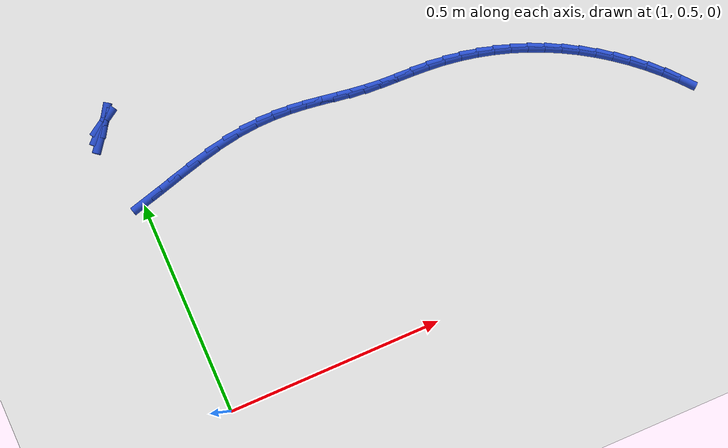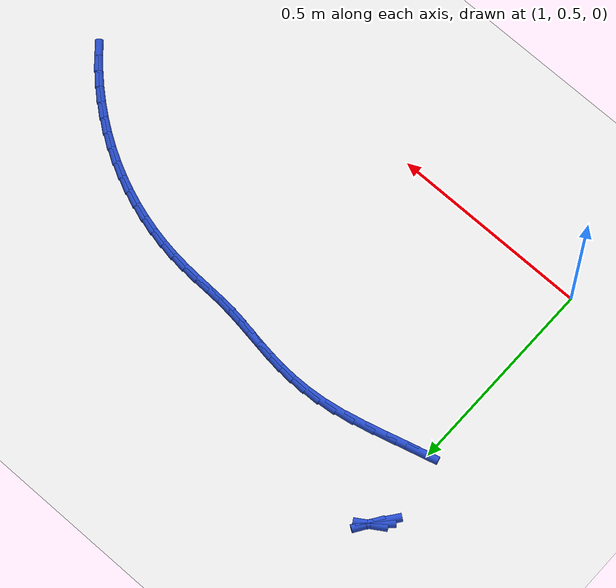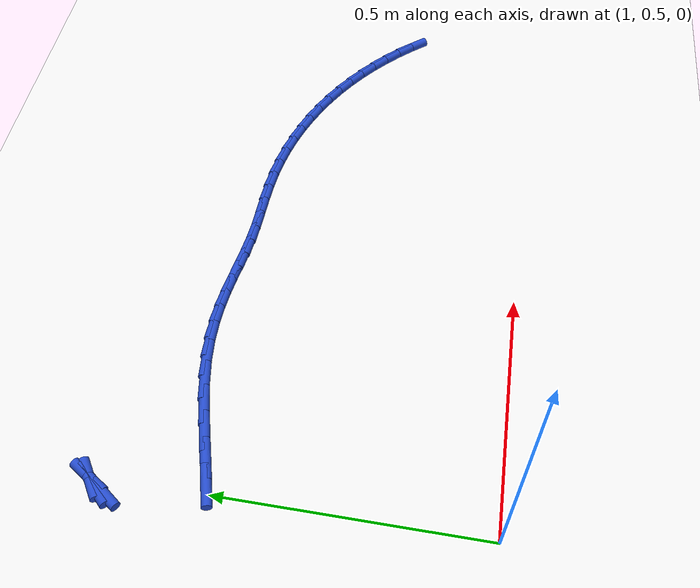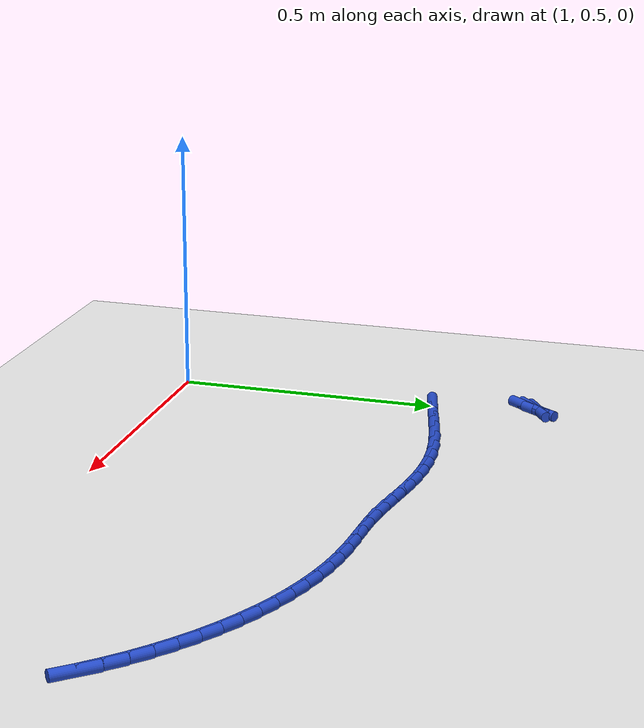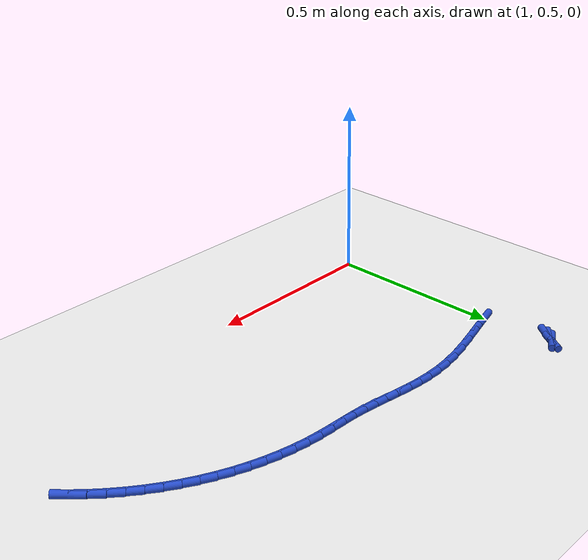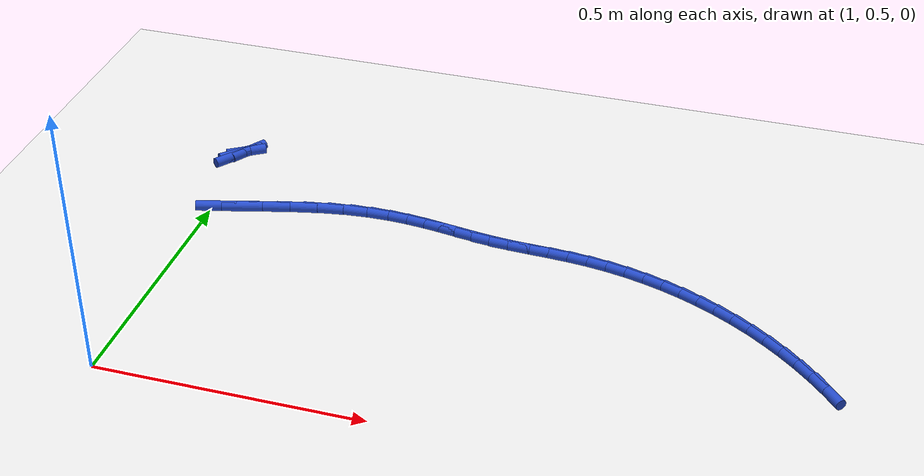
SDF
<sdf version="1.6">
 <world name="default">
  <model name="ground_plane">
   <static>1</static>
   <link name="link">
    <collision name="collision">
     <geometry><plane><normal>0 0 1</normal><size>100 100</size></plane></geometry>
     <surface><friction><ode><mu>100</mu><mu2>50</mu2></ode></friction></surface>
    </collision>
    <visual name="visual">
     <cast_shadows>0</cast_shadows>
     <geometry><plane><normal>0 0 1</normal><size>100 100</size></plane></geometry>
     <material>
      <script><uri>file://media/materials/scripts/gazebo.material</uri><name>Gazebo/WhiteGlow</name></script>
     </material>
    </visual>
   </link>
  </model>
  <model name="line">
   <link name="link_47">
    <pose>0.9768431027024098 1.1958077229747806 0.01 0 1.57 0.7781224287706942</pose>
    <collision name="collision">
     <geometry><cylinder><radius>0.01</radius><length>0.08</length></cylinder></geometry>
    </collision>
    <visual name="visual">
     <material>
      <script><name>Gazebo/Blue</name><uri>file://media/materials/scripts/gazebo.material</uri></script>
     </material>
     <geometry><cylinder><radius>0.01</radius><length>0.08</length></cylinder></geometry>
    </visual>
   </link>
   <link name="link_48">
    <pose>0.9894297027763872 1.2082124892903996 0.01 0 1.57 0.5668651279600222</pose>
    <collision name="collision">
     <geometry><cylinder><radius>0.01</radius><length>0.08</length></cylinder></geometry>
    </collision>
    <visual name="visual">
     <material>
      <script><name>Gazebo/Blue</name><uri>file://media/materials/scripts/gazebo.material</uri></script>
     </material>
     <geometry><cylinder><radius>0.01</radius><length>0.08</length></cylinder></geometry>
    </visual>
   </link>
   <link name="link_49">
    <pose>0.9933382771162095 1.2107005102714379 0.01 0 1.57 0.9958888680821032</pose>
    <collision name="collision">
     <geometry><cylinder><radius>0.01</radius><length>0.08</length></cylinder></geometry>
    </collision>
    <visual name="visual">
     <material>
      <script><name>Gazebo/Blue</name><uri>file://media/materials/scripts/gazebo.material</uri></script>
     </material>
     <geometry><cylinder><radius>0.01</radius><length>0.08</length></cylinder></geometry>
    </visual>
   </link>
   <link name="link_50">
    <pose>0.9876072796097402 1.2018552057309635 0.01 0 1.57 0.9258488552155959</pose>
    <collision name="collision">
     <geometry><cylinder><radius>0.01</radius><length>0.08</length></cylinder></geometry>
    </collision>
    <visual name="visual">
     <material>
      <script><name>Gazebo/Blue</name><uri>file://media/materials/scripts/gazebo.material</uri></script>
     </material>
     <geometry><cylinder><radius>0.01</radius><length>0.08</length></cylinder></geometry>
    </visual>
   </link>
   <link name="link_51">
    <pose>0.9716697754355356 1.1806691086660293 0.01 0 1.57 0.9261754921088093</pose>
    <collision name="collision">
     <geometry><cylinder><radius>0.01</radius><length>0.08</length></cylinder></geometry>
    </collision>
    <visual name="visual">
     <material>
      <script><name>Gazebo/Blue</name><uri>file://media/materials/scripts/gazebo.material</uri></script>
     </material>
     <geometry><cylinder><radius>0.01</radius><length>0.08</length></cylinder></geometry>
    </visual>
   </link>
   <link name="link_61">
    <pose>1.0116015440145871 1.0059673894319143 0.01 0 1.57 0.25953982782651713</pose>
    <collision name="collision">
     <geometry><cylinder><radius>0.01</radius><length>0.08</length></cylinder></geometry>
    </collision>
    <visual name="visual">
     <material>
      <script><name>Gazebo/Blue</name><uri>file://media/materials/scripts/gazebo.material</uri></script>
     </material>
     <geometry><cylinder><radius>0.01</radius><length>0.08</length></cylinder></geometry>
    </visual>
   </link>
   <link name="link_62">
    <pose>1.0607711028946938 1.019023326574883 0.01 0 1.57 0.266469681383502</pose>
    <collision name="collision">
     <geometry><cylinder><radius>0.01</radius><length>0.08</length></cylinder></geometry>
    </collision>
    <visual name="visual">
     <material>
      <script><name>Gazebo/Blue</name><uri>file://media/materials/scripts/gazebo.material</uri></script>
     </material>
     <geometry><cylinder><radius>0.01</radius><length>0.08</length></cylinder></geometry>
    </visual>
   </link>
   <link name="link_63">
    <pose>1.1123745950959743 1.03310907289839 0.01 0 1.57 0.2533410840350094</pose>
    <collision name="collision">
     <geometry><cylinder><radius>0.01</radius><length>0.08</length></cylinder></geometry>
    </collision>
    <visual name="visual">
     <material>
      <script><name>Gazebo/Blue</name><uri>file://media/materials/scripts/gazebo.material</uri></script>
     </material>
     <geometry><cylinder><radius>0.01</radius><length>0.08</length></cylinder></geometry>
    </visual>
   </link>
   <link name="link_64">
    <pose>1.164396683604426 1.0465777942025274 0.01 0 1.57 0.21865437996021253</pose>
    <collision name="collision">
     <geometry><cylinder><radius>0.01</radius><length>0.08</length></cylinder></geometry>
    </collision>
    <visual name="visual">
     <material>
      <script><name>Gazebo/Blue</name><uri>file://media/materials/scripts/gazebo.material</uri></script>
     </material>
     <geometry><cylinder><radius>0.01</radius><length>0.08</length></cylinder></geometry>
    </visual>
   </link>
   <link name="link_65">
    <pose>1.2148220314060487 1.0577826562873878 0.01 0 1.57 0.1578361658310611</pose>
    <collision name="collision">
     <geometry><cylinder><radius>0.01</radius><length>0.08</length></cylinder></geometry>
    </collision>
    <visual name="visual">
     <material>
      <script><name>Gazebo/Blue</name><uri>file://media/materials/scripts/gazebo.material</uri></script>
     </material>
     <geometry><cylinder><radius>0.01</radius><length>0.08</length></cylinder></geometry>
    </visual>
   </link>
   <link name="link_66">
    <pose>1.26185294058029 1.065268097892469 0.01 0 1.57 0.08597641374929144</pose>
    <collision name="collision">
     <geometry><cylinder><radius>0.01</radius><length>0.08</length></cylinder></geometry>
    </collision>
    <visual name="visual">
     <material>
      <script><name>Gazebo/Blue</name><uri>file://media/materials/scripts/gazebo.material</uri></script>
     </material>
     <geometry><cylinder><radius>0.01</radius><length>0.08</length></cylinder></geometry>
    </visual>
   </link>
   <link name="link_67">
    <pose>1.3053261710530084 1.069015007209732 0.01 0 1.57 0.01585553881359983</pose>
    <collision name="collision">
     <geometry><cylinder><radius>0.01</radius><length>0.08</length></cylinder></geometry>
    </collision>
    <visual name="visual">
     <material>
      <script><name>Gazebo/Blue</name><uri>file://media/materials/scripts/gazebo.material</uri></script>
     </material>
     <geometry><cylinder><radius>0.01</radius><length>0.08</length></cylinder></geometry>
    </visual>
   </link>
   <link name="link_68">
    <pose>1.3458213381599664 1.0696571337142582 0.01 0 1.57 -0.04787957326140812</pose>
    <collision name="collision">
     <geometry><cylinder><radius>0.01</radius><length>0.08</length></cylinder></geometry>
    </collision>
    <visual name="visual">
     <material>
      <script><name>Gazebo/Blue</name><uri>file://media/materials/scripts/gazebo.material</uri></script>
     </material>
     <geometry><cylinder><radius>0.01</radius><length>0.08</length></cylinder></geometry>
    </visual>
   </link>
   <link name="link_69">
    <pose>1.3839217874486645 1.067831505191807 0.01 0 1.57 -0.10041747998975852</pose>
    <collision name="collision">
     <geometry><cylinder><radius>0.01</radius><length>0.08</length></cylinder></geometry>
    </collision>
    <visual name="visual">
     <material>
      <script><name>Gazebo/Blue</name><uri>file://media/materials/scripts/gazebo.material</uri></script>
     </material>
     <geometry><cylinder><radius>0.01</radius><length>0.08</length></cylinder></geometry>
    </visual>
   </link>
   <link name="link_70">
    <pose>1.4202108644666065 1.0641751494281386 0.01 0 1.57 -0.13745935292737266</pose>
    <collision name="collision">
     <geometry><cylinder><radius>0.01</radius><length>0.08</length></cylinder></geometry>
    </collision>
    <visual name="visual">
     <material>
      <script><name>Gazebo/Blue</name><uri>file://media/materials/scripts/gazebo.material</uri></script>
     </material>
     <geometry><cylinder><radius>0.01</radius><length>0.08</length></cylinder></geometry>
    </visual>
   </link>
   <link name="link_71">
    <pose>1.455271914761294 1.0593250942090129 0.01 0 1.57 -0.15582397502973513</pose>
    <collision name="collision">
     <geometry><cylinder><radius>0.01</radius><length>0.08</length></cylinder></geometry>
    </collision>
    <visual name="visual">
     <material>
      <script><name>Gazebo/Blue</name><uri>file://media/materials/scripts/gazebo.material</uri></script>
     </material>
     <geometry><cylinder><radius>0.01</radius><length>0.08</length></cylinder></geometry>
    </visual>
   </link>
   <link name="link_72">
    <pose>1.4896882838802303 1.0539183673201908 0.01 0 1.57 -0.1538144058056962</pose>
    <collision name="collision">
     <geometry><cylinder><radius>0.01</radius><length>0.08</length></cylinder></geometry>
    </collision>
    <visual name="visual">
     <material>
      <script><name>Gazebo/Blue</name><uri>file://media/materials/scripts/gazebo.material</uri></script>
     </material>
     <geometry><cylinder><radius>0.01</radius><length>0.08</length></cylinder></geometry>
    </visual>
   </link>
   <link name="link_73">
    <pose>1.5240433173709171 1.0485919965474315 0.01 0 1.57 -0.13138828256461088</pose>
    <collision name="collision">
     <geometry><cylinder><radius>0.01</radius><length>0.08</length></cylinder></geometry>
    </collision>
    <visual name="visual">
     <material>
      <script><name>Gazebo/Blue</name><uri>file://media/materials/scripts/gazebo.material</uri></script>
     </material>
     <geometry><cylinder><radius>0.01</radius><length>0.08</length></cylinder></geometry>
    </visual>
   </link>
   <link name="link_74">
    <pose>1.5589203607808573 1.0439830096764955 0.01 0 1.57 -0.09051141841294229</pose>
    <collision name="collision">
     <geometry><cylinder><radius>0.01</radius><length>0.08</length></cylinder></geometry>
    </collision>
    <visual name="visual">
     <material>
      <script><name>Gazebo/Blue</name><uri>file://media/materials/scripts/gazebo.material</uri></script>
     </material>
     <geometry><cylinder><radius>0.01</radius><length>0.08</length></cylinder></geometry>
    </visual>
   </link>
   <link name="link_75">
    <pose>1.5948958616617415 1.0407178949052458 0.01 0 1.57 -0.051226454961436345</pose>
    <collision name="collision">
     <geometry><cylinder><radius>0.01</radius><length>0.08</length></cylinder></geometry>
    </collision>
    <visual name="visual">
     <material>
      <script><name>Gazebo/Blue</name><uri>file://media/materials/scripts/gazebo.material</uri></script>
     </material>
     <geometry><cylinder><radius>0.01</radius><length>0.08</length></cylinder></geometry>
    </visual>
   </link>
   <link name="link_76">
    <pose>1.632143763413062 1.0388081461626042 0.01 0 1.57 -0.039013599618831454</pose>
    <collision name="collision">
     <geometry><cylinder><radius>0.01</radius><length>0.08</length></cylinder></geometry>
    </collision>
    <visual name="visual">
     <material>
      <script><name>Gazebo/Blue</name><uri>file://media/materials/scripts/gazebo.material</uri></script>
     </material>
     <geometry><cylinder><radius>0.01</radius><length>0.08</length></cylinder></geometry>
    </visual>
   </link>
   <link name="link_77">
    <pose>1.670220582514863 1.0373218782474272 0.01 0 1.57 -0.05396181432728027</pose>
    <collision name="collision">
     <geometry><cylinder><radius>0.01</radius><length>0.08</length></cylinder></geometry>
    </collision>
    <visual name="visual">
     <material>
      <script><name>Gazebo/Blue</name><uri>file://media/materials/scripts/gazebo.material</uri></script>
     </material>
     <geometry><cylinder><radius>0.01</radius><length>0.08</length></cylinder></geometry>
    </visual>
   </link>
   <link name="link_78">
    <pose>1.708630470740912 1.0352471968603307 0.01 0 1.57 -0.09480887139060566</pose>
    <collision name="collision">
     <geometry><cylinder><radius>0.01</radius><length>0.08</length></cylinder></geometry>
    </collision>
    <visual name="visual">
     <material>
      <script><name>Gazebo/Blue</name><uri>file://media/materials/scripts/gazebo.material</uri></script>
     </material>
     <geometry><cylinder><radius>0.01</radius><length>0.08</length></cylinder></geometry>
    </visual>
   </link>
   <link name="link_79">
    <pose>1.746893122568381 1.0316086495219603 0.01 0 1.57 -0.1473588065636504</pose>
    <collision name="collision">
     <geometry><cylinder><radius>0.01</radius><length>0.08</length></cylinder></geometry>
    </collision>
    <visual name="visual">
     <material>
      <script><name>Gazebo/Blue</name><uri>file://media/materials/scripts/gazebo.material</uri></script>
     </material>
     <geometry><cylinder><radius>0.01</radius><length>0.08</length></cylinder></geometry>
    </visual>
   </link>
   <link name="link_80">
    <pose>1.784765493885425 1.0259870729269553 0.01 0 1.57 -0.2000921047071594</pose>
    <collision name="collision">
     <geometry><cylinder><radius>0.01</radius><length>0.08</length></cylinder></geometry>
    </collision>
    <visual name="visual">
     <material>
      <script><name>Gazebo/Blue</name><uri>file://media/materials/scripts/gazebo.material</uri></script>
     </material>
     <geometry><cylinder><radius>0.01</radius><length>0.08</length></cylinder></geometry>
    </visual>
   </link>
   <link name="link_81">
    <pose>1.8221896171093883 1.018397238935061 0.01 0 1.57 -0.25263947650053314</pose>
    <collision name="collision">
     <geometry><cylinder><radius>0.01</radius><length>0.08</length></cylinder></geometry>
    </collision>
    <visual name="visual">
     <material>
      <script><name>Gazebo/Blue</name><uri>file://media/materials/scripts/gazebo.material</uri></script>
     </material>
     <geometry><cylinder><radius>0.01</radius><length>0.08</length></cylinder></geometry>
    </visual>
   </link>
   <link name="link_82">
    <pose>1.8591124281042621 1.0088654161524775 0.01 0 1.57 -0.3049478398329003</pose>
    <collision name="collision">
     <geometry><cylinder><radius>0.01</radius><length>0.08</length></cylinder></geometry>
    </collision>
    <visual name="visual">
     <material>
      <script><name>Gazebo/Blue</name><uri>file://media/materials/scripts/gazebo.material</uri></script>
     </material>
     <geometry><cylinder><radius>0.01</radius><length>0.08</length></cylinder></geometry>
    </visual>
   </link>
   <link name="link_83">
    <pose>1.8954808627340403 0.9974178731854054 0.01 0 1.57 -0.35697052521318434</pose>
    <collision name="collision">
     <geometry><cylinder><radius>0.01</radius><length>0.08</length></cylinder></geometry>
    </collision>
    <visual name="visual">
     <material>
      <script><name>Gazebo/Blue</name><uri>file://media/materials/scripts/gazebo.material</uri></script>
     </material>
     <geometry><cylinder><radius>0.01</radius><length>0.08</length></cylinder></geometry>
    </visual>
   </link>
   <link name="link_84">
    <pose>1.931241856862713 0.9840808786400467 0.01 0 1.57 -0.4086671174757542</pose>
    <collision name="collision">
     <geometry><cylinder><radius>0.01</radius><length>0.08</length></cylinder></geometry>
    </collision>
    <visual name="visual">
     <material>
      <script><name>Gazebo/Blue</name><uri>file://media/materials/scripts/gazebo.material</uri></script>
     </material>
     <geometry><cylinder><radius>0.01</radius><length>0.08</length></cylinder></geometry>
    </visual>
   </link>
   <link name="link_85">
    <pose>1.9663423463542742 0.9688807011226017 0.01 0 1.57 -0.4600031367282197</pose>
    <collision name="collision">
     <geometry><cylinder><radius>0.01</radius><length>0.08</length></cylinder></geometry>
    </collision>
    <visual name="visual">
     <material>
      <script><name>Gazebo/Blue</name><uri>file://media/materials/scripts/gazebo.material</uri></script>
     </material>
     <geometry><cylinder><radius>0.01</radius><length>0.08</length></cylinder></geometry>
    </visual>
   </link>
   <link name="link_86">
    <pose>2.000729267072715 0.9518436092392718 0.01 0 1.57 -0.510949588667603</pose>
    <collision name="collision">
     <geometry><cylinder><radius>0.01</radius><length>0.08</length></cylinder></geometry>
    </collision>
    <visual name="visual">
     <material>
      <script><name>Gazebo/Blue</name><uri>file://media/materials/scripts/gazebo.material</uri></script>
     </material>
     <geometry><cylinder><radius>0.01</radius><length>0.08</length></cylinder></geometry>
    </visual>
   </link>
   <link name="link_87">
    <pose>2.034349554882028 0.9329958715962579 0.01 0 1.57 -0.5614824162027809</pose>
    <collision name="collision">
     <geometry><cylinder><radius>0.01</radius><length>0.08</length></cylinder></geometry>
    </collision>
    <visual name="visual">
     <material>
      <script><name>Gazebo/Blue</name><uri>file://media/materials/scripts/gazebo.material</uri></script>
     </material>
     <geometry><cylinder><radius>0.01</radius><length>0.08</length></cylinder></geometry>
    </visual>
   </link>
   <link name="link_88">
    <pose>2.0671501456462056 0.9123637567997609 0.01 0 1.57 -0.6115818841756353</pose>
    <collision name="collision">
     <geometry><cylinder><radius>0.01</radius><length>0.08</length></cylinder></geometry>
    </collision>
    <visual name="visual">
     <material>
      <script><name>Gazebo/Blue</name><uri>file://media/materials/scripts/gazebo.material</uri></script>
     </material>
     <geometry><cylinder><radius>0.01</radius><length>0.08</length></cylinder></geometry>
    </visual>
   </link>
   <link name="link_89">
    <pose>2.0990779752292403 0.8899735334559817 0.01 0 1.57 -0.6612319272697926</pose>
    <collision name="collision">
     <geometry><cylinder><radius>0.01</radius><length>0.08</length></cylinder></geometry>
    </collision>
    <visual name="visual">
     <material>
      <script><name>Gazebo/Blue</name><uri>file://media/materials/scripts/gazebo.material</uri></script>
     </material>
     <geometry><cylinder><radius>0.01</radius><length>0.08</length></cylinder></geometry>
    </visual>
   </link>
   <link name="link_90">
    <pose>2.130079979495124 0.8658514701711221 0.01 0 1.57 -0.7104194883610091</pose>
    <collision name="collision">
     <geometry><cylinder><radius>0.01</radius><length>0.08</length></cylinder></geometry>
    </collision>
    <visual name="visual">
     <material>
      <script><name>Gazebo/Blue</name><uri>file://media/materials/scripts/gazebo.material</uri></script>
     </material>
     <geometry><cylinder><radius>0.01</radius><length>0.08</length></cylinder></geometry>
    </visual>
   </link>
   <link name="link_91">
    <pose>2.160103094307849 0.840023835551382 0.01 0 1.57 -0.7591338710062161</pose>
    <collision name="collision">
     <geometry><cylinder><radius>0.01</radius><length>0.08</length></cylinder></geometry>
    </collision>
    <visual name="visual">
     <material>
      <script><name>Gazebo/Blue</name><uri>file://media/materials/scripts/gazebo.material</uri></script>
     </material>
     <geometry><cylinder><radius>0.01</radius><length>0.08</length></cylinder></geometry>
    </visual>
   </link>
   <link name="link_92">
    <pose>2.189094255531408 0.8125168982029636 0.01 0 1.57 -0.8073709682311137</pose>
    <collision name="collision">
     <geometry><cylinder><radius>0.01</radius><length>0.08</length></cylinder></geometry>
    </collision>
    <visual name="visual">
     <material>
      <script><name>Gazebo/Blue</name><uri>file://media/materials/scripts/gazebo.material</uri></script>
     </material>
     <geometry><cylinder><radius>0.01</radius><length>0.08</length></cylinder></geometry>
    </visual>
   </link>
   <link name="link_93">
    <pose>2.2169997796027725 0.7833572913142453 0.01 0 1.57 -0.8559128636690778</pose>
    <collision name="collision">
     <geometry><cylinder><radius>0.01</radius><length>0.08</length></cylinder></geometry>
    </collision>
    <visual name="visual">
     <material>
      <script><name>Gazebo/Blue</name><uri>file://media/materials/scripts/gazebo.material</uri></script>
     </material>
     <geometry><cylinder><radius>0.01</radius><length>0.08</length></cylinder></geometry>
    </visual>
   </link>
  </model>
 </world>
</sdf>
